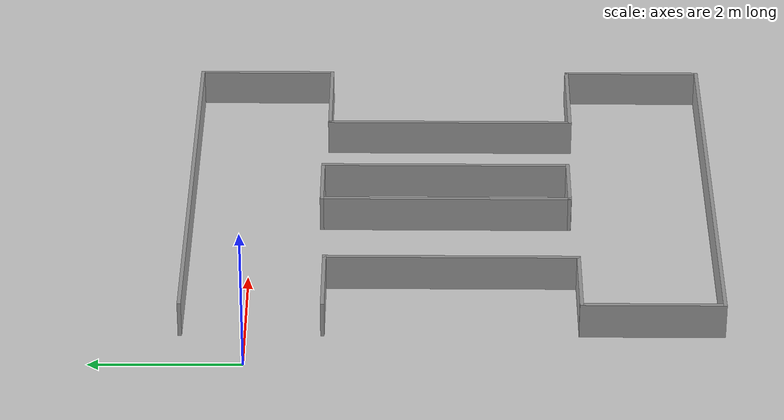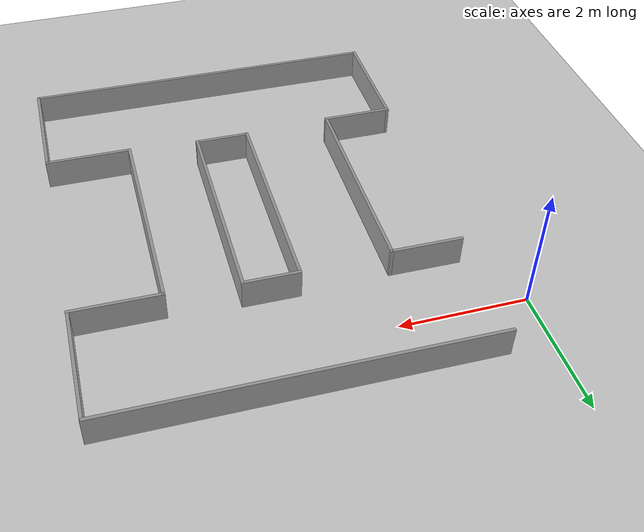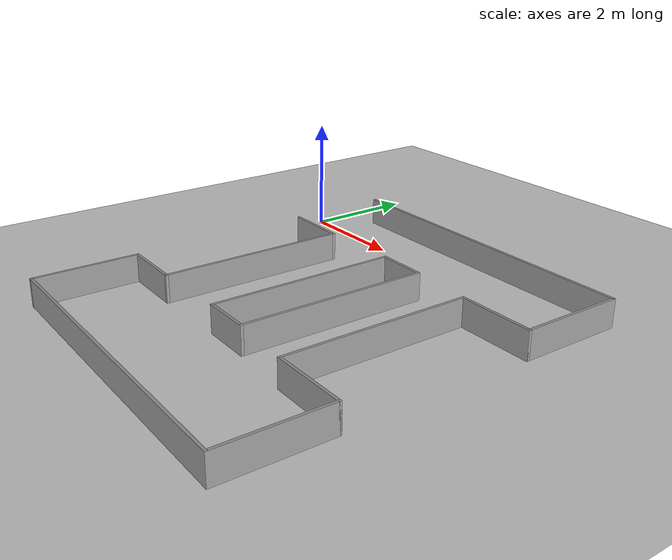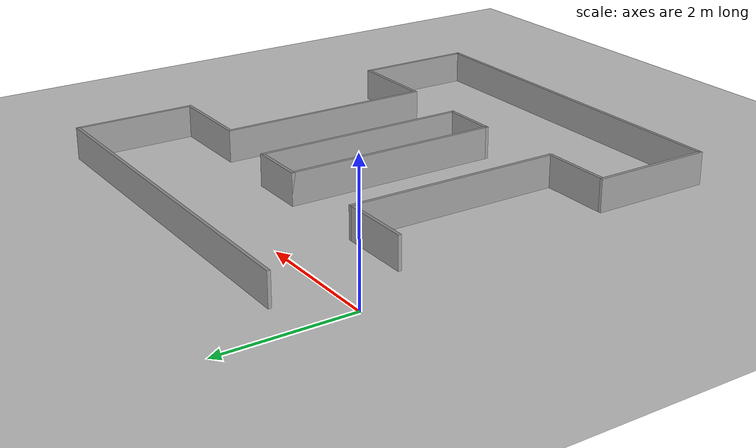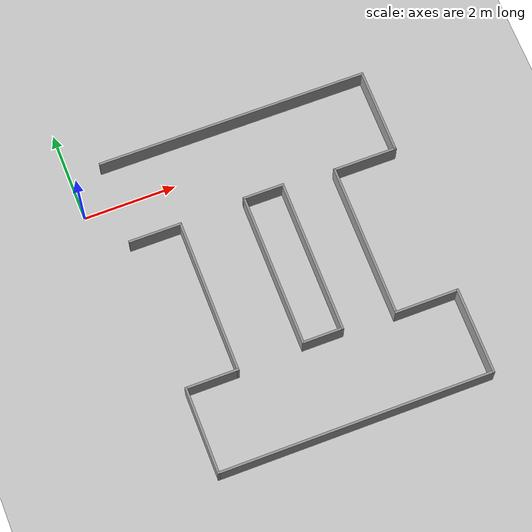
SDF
<sdf version="1.7">
 <world name="default">
  <light name="sun" type="directional">
   <pose>0 0 10 0 -0 0</pose>
   <diffuse>0.8 0.8 0.8 1</diffuse>
   <specular>0.2 0.2 0.2 1</specular>
   <attenuation>
    <range>1000</range>
    <constant>0.9</constant>
    <linear>0.01</linear>
    <quadratic>0.001</quadratic>
   </attenuation>
   <direction>-0.5 0.1 -0.9</direction>
   <spot><inner_angle>0</inner_angle><outer_angle>0</outer_angle><falloff>0</falloff></spot>
  </light>
  <model name="ground_plane">
   <static>1</static>
   <link name="link">
    <collision name="collision">
     <geometry><plane><normal>0 0 1</normal><size>100 100</size></plane></geometry>
     <surface>
      <contact><collide_bitmask>65535</collide_bitmask></contact>
      <friction><ode><mu>100</mu><mu2>50</mu2></ode></friction>
     </surface>
    </collision>
    <visual name="visual">
     <cast_shadows>0</cast_shadows>
     <geometry><plane><normal>0 0 1</normal><size>100 100</size></plane></geometry>
     <material>
      <script><uri>file://media/materials/scripts/gazebo.material</uri><name>Gazebo/Grey</name></script>
     </material>
    </visual>
   </link>
  </model>
  <gravity>0 0 -9.8</gravity>
  <magnetic_field>6e-06 2.3e-05 -4.2e-05</magnetic_field>
  <atmosphere type="adiabatic"/>
  <physics type="ode">
   <max_step_size>0.001</max_step_size>
   <real_time_factor>1</real_time_factor>
   <real_time_update_rate>1000</real_time_update_rate>
  </physics>
  <scene><ambient>0.4 0.4 0.4 1</ambient><background>0.7 0.7 0.7 1</background><shadows>1</shadows></scene>
  <audio><device>default</device></audio>
  <spherical_coordinates>
   <surface_model>EARTH_WGS84</surface_model>
   <latitude_deg>0</latitude_deg>
   <longitude_deg>0</longitude_deg>
   <elevation>0</elevation>
   <heading_deg>0</heading_deg>
  </spherical_coordinates>
  <model name="H_Big">
   <pose>3.58446 -2.70303 0 0 0 -1.57776</pose>
   <link name="Wall_10">
    <collision name="Wall_10_Collision">
     <geometry><box><size>1.15 0.05 0.5</size></box></geometry>
     <pose>0 0 0.25 0 -0 0</pose>
    </collision>
    <visual name="Wall_10_Visual">
     <pose>0 0 0.25 0 -0 0</pose>
     <geometry><box><size>1.15 0.05 0.5</size></box></geometry>
     <material>
      <script><uri>file://media/materials/scripts/gazebo.material</uri><name>Gazebo/Grey</name></script>
      <ambient>1 1 1 1</ambient>
     </material>
     <meta><layer>0</layer></meta>
    </visual>
    <pose>1.675 -2.37493 0 0 -0 1.5708</pose>
   </link>
   <link name="Wall_11">
    <collision name="Wall_11_Collision">
     <geometry><box><size>3.4 0.05 0.5</size></box></geometry>
     <pose>0 0 0.25 0 -0 0</pose>
    </collision>
    <visual name="Wall_11_Visual">
     <pose>0 0 0.25 0 -0 0</pose>
     <geometry><box><size>3.4 0.05 0.5</size></box></geometry>
     <material>
      <script><uri>file://media/materials/scripts/gazebo.material</uri><name>Gazebo/Grey</name></script>
      <ambient>1 1 1 1</ambient>
     </material>
     <meta><layer>0</layer></meta>
    </visual>
    <pose>0 -1.82493 0 0 -0 3.14159</pose>
   </link>
   <link name="Wall_12">
    <collision name="Wall_12_Collision">
     <geometry><box><size>1.15026 0.05 0.5</size></box></geometry>
     <pose>0 0 0.25 0 -0 0</pose>
    </collision>
    <visual name="Wall_12_Visual">
     <pose>0 0 0.25 0 -0 0</pose>
     <geometry><box><size>1.15026 0.05 0.5</size></box></geometry>
     <material>
      <script><uri>file://media/materials/scripts/gazebo.material</uri><name>Gazebo/Grey</name></script>
      <ambient>1 1 1 1</ambient>
     </material>
     <meta><layer>0</layer></meta>
    </visual>
    <pose>-1.675 -2.37493 0 0 -0 -1.5708</pose>
   </link>
   <link name="Wall_14">
    <collision name="Wall_14_Collision">
     <geometry><box><size>0.9 0.05 0.5</size></box></geometry>
     <pose>0 0 0.25 0 -0 0</pose>
    </collision>
    <visual name="Wall_14_Visual">
     <pose>0 0 0.25 0 -0 0</pose>
     <geometry><box><size>0.9 0.05 0.5</size></box></geometry>
     <material>
      <script><uri>file://media/materials/scripts/gazebo.material</uri><name>Gazebo/Grey</name></script>
      <ambient>1 1 1 1</ambient>
     </material>
     <meta><layer>0</layer></meta>
    </visual>
    <pose>-1.743 0.021065 0 0 -0 -1.5708</pose>
   </link>
   <link name="Wall_15">
    <collision name="Wall_15_Collision">
     <geometry><box><size>3.4 0.05 0.5</size></box></geometry>
     <pose>0 0 0.25 0 -0 0</pose>
    </collision>
    <visual name="Wall_15_Visual">
     <pose>0 0 0.25 0 -0 0</pose>
     <geometry><box><size>3.4 0.05 0.5</size></box></geometry>
     <material>
      <script><uri>file://media/materials/scripts/gazebo.material</uri><name>Gazebo/Grey</name></script>
      <ambient>1 1 1 1</ambient>
     </material>
     <meta><layer>0</layer></meta>
    </visual>
    <pose>-0.068 -0.403935 0 0 -0 0</pose>
   </link>
   <link name="Wall_16">
    <collision name="Wall_16_Collision">
     <geometry><box><size>0.9 0.05 0.5</size></box></geometry>
     <pose>0 0 0.25 0 -0 0</pose>
    </collision>
    <visual name="Wall_16_Visual">
     <pose>0 0 0.25 0 -0 0</pose>
     <geometry><box><size>0.9 0.05 0.5</size></box></geometry>
     <material>
      <script><uri>file://media/materials/scripts/gazebo.material</uri><name>Gazebo/Grey</name></script>
      <ambient>1 1 1 1</ambient>
     </material>
     <meta><layer>0</layer></meta>
    </visual>
    <pose>1.607 0.021065 0 0 -0 1.5708</pose>
   </link>
   <link name="Wall_17">
    <collision name="Wall_17_Collision">
     <geometry><box><size>3.3998 0.05 0.5</size></box></geometry>
     <pose>0 0 0.25 0 -0 0</pose>
    </collision>
    <visual name="Wall_17_Visual">
     <pose>0 0 0.25 0 -0 0</pose>
     <geometry><box><size>3.3998 0.05 0.5</size></box></geometry>
     <material>
      <script><uri>file://media/materials/scripts/gazebo.material</uri><name>Gazebo/Grey</name></script>
      <ambient>1 1 1 1</ambient>
     </material>
     <meta><layer>0</layer></meta>
    </visual>
    <pose>-0.068 0.446065 0 0 -0 3.14159</pose>
   </link>
   <link name="Wall_2">
    <collision name="Wall_2_Collision">
     <geometry><box><size>5.9 0.05 0.5</size></box></geometry>
     <pose>0 0 0.25 0 -0 0</pose>
    </collision>
    <visual name="Wall_2_Visual">
     <pose>0 0 0.25 0 -0 0</pose>
     <geometry><box><size>5.9 0.05 0.5</size></box></geometry>
     <material>
      <script><uri>file://media/materials/scripts/gazebo.material</uri><name>Gazebo/Grey</name></script>
      <ambient>1 1 1 1</ambient>
     </material>
     <meta><layer>0</layer></meta>
    </visual>
    <pose>-3.525 6.5e-05 0 0 -0 1.5708</pose>
   </link>
   <link name="Wall_3">
    <collision name="Wall_3_Collision">
     <geometry><box><size>1.9 0.05 0.5</size></box></geometry>
     <pose>0 0 0.25 0 -0 0</pose>
    </collision>
    <visual name="Wall_3_Visual">
     <pose>0 0 0.25 0 -0 0</pose>
     <geometry><box><size>1.9 0.05 0.5</size></box></geometry>
     <material>
      <script><uri>file://media/materials/scripts/gazebo.material</uri><name>Gazebo/Grey</name></script>
      <ambient>1 1 1 1</ambient>
     </material>
     <meta><layer>0</layer></meta>
    </visual>
    <pose>-2.6 2.92507 0 0 -0 0</pose>
   </link>
   <link name="Wall_4">
    <collision name="Wall_4_Collision">
     <geometry><box><size>1.4 0.05 0.5</size></box></geometry>
     <pose>0 0 0.25 0 -0 0</pose>
    </collision>
    <visual name="Wall_4_Visual">
     <pose>0 0 0.25 0 -0 0</pose>
     <geometry><box><size>1.4 0.05 0.5</size></box></geometry>
     <material>
      <script><uri>file://media/materials/scripts/gazebo.material</uri><name>Gazebo/Grey</name></script>
      <ambient>1 1 1 1</ambient>
     </material>
     <meta><layer>0</layer></meta>
    </visual>
    <pose>-1.675 2.25007 0 0 -0 -1.5708</pose>
   </link>
   <link name="Wall_5">
    <collision name="Wall_5_Collision">
     <geometry><box><size>3.4 0.05 0.5</size></box></geometry>
     <pose>0 0 0.25 0 -0 0</pose>
    </collision>
    <visual name="Wall_5_Visual">
     <pose>0 0 0.25 0 -0 0</pose>
     <geometry><box><size>3.4 0.05 0.5</size></box></geometry>
     <material>
      <script><uri>file://media/materials/scripts/gazebo.material</uri><name>Gazebo/Grey</name></script>
      <ambient>1 1 1 1</ambient>
     </material>
     <meta><layer>0</layer></meta>
    </visual>
    <pose>0 1.57506 0 0 -0 0</pose>
   </link>
   <link name="Wall_6">
    <collision name="Wall_6_Collision">
     <geometry><box><size>1.4 0.05 0.5</size></box></geometry>
     <pose>0 0 0.25 0 -0 0</pose>
    </collision>
    <visual name="Wall_6_Visual">
     <pose>0 0 0.25 0 -0 0</pose>
     <geometry><box><size>1.4 0.05 0.5</size></box></geometry>
     <material>
      <script><uri>file://media/materials/scripts/gazebo.material</uri><name>Gazebo/Grey</name></script>
      <ambient>1 1 1 1</ambient>
     </material>
     <meta><layer>0</layer></meta>
    </visual>
    <pose>1.675 2.25007 0 0 -0 1.5708</pose>
   </link>
   <link name="Wall_7">
    <collision name="Wall_7_Collision">
     <geometry><box><size>1.9 0.05 0.5</size></box></geometry>
     <pose>0 0 0.25 0 -0 0</pose>
    </collision>
    <visual name="Wall_7_Visual">
     <pose>0 0 0.25 0 -0 0</pose>
     <geometry><box><size>1.9 0.05 0.5</size></box></geometry>
     <material>
      <script><uri>file://media/materials/scripts/gazebo.material</uri><name>Gazebo/Grey</name></script>
      <ambient>1 1 1 1</ambient>
     </material>
     <meta><layer>0</layer></meta>
    </visual>
    <pose>2.6 2.92507 0 0 -0 0</pose>
   </link>
   <link name="Wall_8">
    <collision name="Wall_8_Collision">
     <geometry><box><size>5.9 0.05 0.5</size></box></geometry>
     <pose>0 0 0.25 0 -0 0</pose>
    </collision>
    <visual name="Wall_8_Visual">
     <pose>0 0 0.25 0 -0 0</pose>
     <geometry><box><size>5.9 0.05 0.5</size></box></geometry>
     <material>
      <script><uri>file://media/materials/scripts/gazebo.material</uri><name>Gazebo/Grey</name></script>
      <ambient>1 1 1 1</ambient>
     </material>
     <meta><layer>0</layer></meta>
    </visual>
    <pose>3.525 6.5e-05 0 0 -0 -1.5708</pose>
   </link>
   <link name="Wall_9">
    <collision name="Wall_9_Collision">
     <geometry><box><size>1.9 0.05 0.5</size></box></geometry>
     <pose>0 0 0.25 0 -0 0</pose>
    </collision>
    <visual name="Wall_9_Visual">
     <pose>0 0 0.25 0 -0 0</pose>
     <geometry><box><size>1.9 0.05 0.5</size></box></geometry>
     <material>
      <script><uri>file://media/materials/scripts/gazebo.material</uri><name>Gazebo/Grey</name></script>
      <ambient>1 1 1 1</ambient>
     </material>
     <meta><layer>0</layer></meta>
    </visual>
    <pose>2.6 -2.92494 0 0 -0 3.14159</pose>
   </link>
   <static>1</static>
  </model>
 </world>
</sdf>
